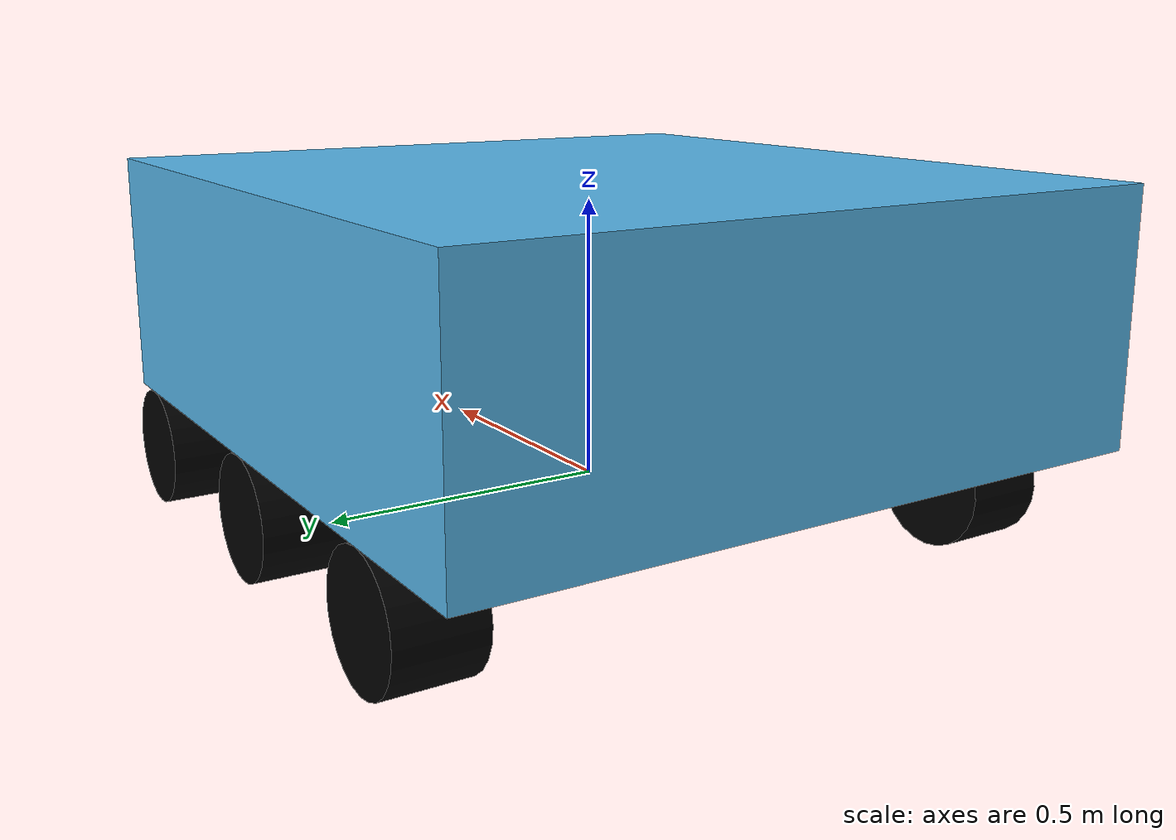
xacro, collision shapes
<?xml version="1.0"?>
<robot xmlns:xacro="http://ros.org/wiki/xacro">

  <xacro:include filename="$(find mowbot_gazebo_modelv3_description)/urdf/decorations.xacro" />
  <xacro:include filename="$(find mowbot_gazebo_modelv3_description)/urdf/inertia_macros.xacro" />
  <xacro:include filename="$(find mowbot_gazebo_modelv3_description)/urdf/track.xacro" />

  <!-- load parameter -->
  <xacro:property name="M_PI" value="3.14159"/>

  <!-- Robot Size -->
  <xacro:property name="robot_x_size" value="1.31600000" />
  <xacro:property name="robot_y_size" value="1.24000000" />
  <xacro:property name="robot_z_size" value="0.66160000" />

  <!-- Track Properties -->
  <xacro:property name="track_x_size" value="0.968" />
  <xacro:property name="track_y_size" value="0.15" />
  <xacro:property name="track_z_size" value="0.1" />
  <xacro:property name="track_wheel_radius" value="0.11" />
  <xacro:property name="track_wheel_width" value="0.15" />

  <!-- Track Mounting Position -->
  <xacro:property name="track_mount_x_size" value="0.1" />
  <xacro:property name="track_mount_y_size" value="${robot_y_size - track_wheel_width}" />
  <xacro:property name="track_mount_vertical_offset" value="0" />

  <!-- Body Box Size -->
  <xacro:property name="body_box_x_size" value="${robot_x_size}" />
  <xacro:property name="body_box_y_size" value="${robot_y_size}" />
  <xacro:property name="body_box_z_size" value="${robot_z_size - 2*track_wheel_radius}" />

  <!-- Robot mass (kg) -->
  <xacro:property name="robot_mass" value="310" />
  <xacro:property name="robot_body_mass" value="297" />
  <xacro:property name="robot_track_mass" value="0.5" />
  <xacro:property name="robot_track_wheel_mass" value="1" />

  <!-- robot body -->
  <link name="base_link">
  </link>

  <!-- robot body box -->
  <!-- body box link to store the robot's body inertia -->
  <link name="body_box">
    <collision>
      <geometry>
        <box size="${body_box_x_size} ${body_box_y_size} ${body_box_z_size}"/>
      </geometry>
    </collision>
    <inertial_box mass="297" x="${body_box_x_size}" y="${body_box_y_size}" z="${body_box_z_size}">
      <origin xyz="0 0 0" />
    </inertial_box>
  </link>

  <joint name="body_box_joint" type="fixed">
    <origin xyz="0 0 ${0.5*(robot_z_size-2*track_wheel_radius)+track_wheel_radius}" rpy="0 0 0" />
    <parent link="base_link" />
    <child link="body_box" />
  </joint>

  <link name="base_visual">
    <visual>
      <geometry>
        <mesh filename="package://mowbot_gazebo_modelv3_description/mesh/mowbot_modelv3.stl" scale="1.0 1.0 1.0"/>
      </geometry>
      <material name="orange"/>
    </visual>
  </link>

  <joint name="base_visual_joint" type="fixed">
    <origin xyz="0 0 ${track_wheel_radius}" rpy="0 0 0" />
    <parent link="base_link" />
    <child link="base_visual" />
  </joint>

  <link name="base_footprint">
  </link>

  <joint name="base_footprint_joint" type="fixed">
    <origin xyz="0.0 0.0 ${-track_wheel_radius}" rpy="0.0 0.0 0.0"/>
    <parent link="base_link" />
    <child link="base_footprint" />
  </joint>

  <!-- Track macros -->
  <xacro:track track_prefix="left">
    <origin xyz="${track_mount_x_size} ${0.5*track_mount_y_size} ${-track_mount_vertical_offset}" rpy="0 0 0"/>
  </xacro:track>

  <xacro:track track_prefix="right">
    <origin xyz="${track_mount_x_size} ${-0.5*track_mount_y_size} ${-track_mount_vertical_offset}" rpy="0 0 0"/>
  </xacro:track>

  <!-- Gazebo -->
  <gazebo>
    <plugin name="gazebo_ros2_control" filename="libgazebo_ros2_control.so">
      <parameters>$(find mowbot_gazebo_modelv3_description)/config/gazebo_control.yaml</parameters>
    </plugin>
  </gazebo>

  <gazebo reference="base_visual">
    <material>Gazebo/Orange</material>
  </gazebo>

  <!-- ROS2 control -->
  <ros2_control name="mowbot_hardware" type="system">
    <hardware>
        <plugin>gazebo_ros2_control/GazeboSystem</plugin>
    </hardware>

    <!-- Left Track -->
    <joint name="left_track_front_wheel_joint" type="continuous">
      <command_interface name="velocity">
        <param name="min">-2</param>
        <param name="max">2</param>
      </command_interface>
      <state_interface name="position"/>
      <state_interface name="velocity"/>
    </joint>

    <joint name="left_track_middle_wheel_joint" type="continuous">
      <command_interface name="velocity">
        <param name="min">-2</param>
        <param name="max">2</param>
      </command_interface>
      <state_interface name="position"/>
      <state_interface name="velocity"/>
    </joint>

    <joint name="left_track_rear_wheel_joint" type="continuous">
      <command_interface name="velocity">
        <param name="min">-2</param>
        <param name="max">2</param>
      </command_interface>
      <state_interface name="position"/>
      <state_interface name="velocity"/>
    </joint>

    <!-- Right Track -->
    <joint name="right_track_front_wheel_joint" type="continuous">
      <command_interface name="velocity">
        <param name="min">-2</param>
        <param name="max">2</param>
      </command_interface>
      <state_interface name="position"/>
      <state_interface name="velocity"/>
    </joint>

    <joint name="right_track_middle_wheel_joint" type="continuous">
      <command_interface name="velocity">
        <param name="min">-2</param>
        <param name="max">2</param>
      </command_interface>
      <state_interface name="position"/>
      <state_interface name="velocity"/>
    </joint>

    <joint name="right_track_rear_wheel_joint" type="continuous">
      <command_interface name="velocity">
        <param name="min">-2</param>
        <param name="max">2</param>
      </command_interface>
      <state_interface name="position"/>
      <state_interface name="velocity"/>
    </joint>

  </ros2_control>

</robot>

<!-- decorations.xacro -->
<robot xmlns:xacro="http://ros.org/wiki/xacro">

  <material name="orange"><color rgba="1.0 0.4235 0.0392 1.0"/></material>
  <material name="grey"><color rgba="0.5 0.5 0.5 1.0"/></material>
  <material name="black"><color rgba="0.0 0.0 0.0 1.0"/></material>

</robot>

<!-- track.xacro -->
<robot xmlns:xacro="http://www.ros.org/wiki/xacro">

  <!-- Macro for a single track -->
  <!-- TODO: try to fix the problem that the macros of inertia_macros.xacro are not working in this file -->
  <xacro:macro name="track" params="track_prefix *joint_pose">

    <link name="${track_prefix}_track">
      <inertial>
          <origin xyz="0 0 0" />
          <mass value="${robot_track_mass}" />
          <inertia ixx="${(1/12) * robot_track_mass * (track_y_size*track_y_size+track_z_size*track_z_size)}" ixy="0.0" ixz="0.0"
                  iyy="${(1/12) * robot_track_mass * (track_x_size*track_x_size+track_z_size*track_z_size)}" iyz="0.0"
                  izz="${(1/12) * robot_track_mass * (track_x_size*track_x_size+track_y_size*track_y_size)}" />
      </inertial>
    </link>

    <joint name="${track_prefix}_track_joint" type="fixed">
      <parent link="base_link"/>
      <child link="${track_prefix}_track"/>
      <xacro:insert_block name="joint_pose"/>
      <axis xyz="0 1 0"/>
    </joint>

    <!-- Track Wheel -->
    <xacro:track_wheel
      wheel_prefix="${track_prefix}_track_front"
      parent_link="${track_prefix}_track"
      mass="${robot_track_wheel_mass}"
      radius="${track_wheel_radius}"
      length="${track_wheel_width}"
      origin_xyz="${-0.5*track_x_size} 0 0"
    />

    <xacro:track_wheel
      wheel_prefix="${track_prefix}_track_rear"
      parent_link="${track_prefix}_track"
      mass="${robot_track_wheel_mass}"
      radius="${track_wheel_radius}"
      length="${track_wheel_width}"
      origin_xyz="${0.5*track_x_size} 0 0"
    />

    <xacro:track_wheel
      wheel_prefix="${track_prefix}_track_middle"
      parent_link="${track_prefix}_track"
      mass="${robot_track_wheel_mass}"
      radius="${track_wheel_radius}"
      length="${track_wheel_width}"
      origin_xyz="0 0 0"
    />

  </xacro:macro>

  <!-- Macro for track wheel -->
  <xacro:macro name="track_wheel" params="wheel_prefix parent_link mass radius length origin_xyz">
    <link name="${wheel_prefix}_wheel">
      <visual>
        <origin xyz="0 0 0" rpy="${M_PI/2} 0 0"/>
        <geometry>
          <cylinder radius="${radius}" length="${length}"/>
        </geometry>
        <material name="black"/>
      </visual>
      <collision>
        <origin xyz="0 0 0" rpy="${M_PI/2} 0 0"/>
        <geometry>
          <cylinder radius="${radius}" length="${length}"/>
        </geometry>
      </collision>

      <inertial>
          <origin xyz="0 0 0" />
          <mass value="${mass}" />
          <inertia ixx="${(1/12) * mass * (3*radius*radius + length*length)}" ixy="0.0" ixz="0.0"
                  iyy="${(1/12) * mass * (3*radius*radius + length*length)}" iyz="0.0"
                  izz="${(1/2) * mass * (radius*radius)}" />
      </inertial>
    </link>

    <joint name="${wheel_prefix}_wheel_joint" type="continuous">
      <parent link="${parent_link}"/>
      <child link="${wheel_prefix}_wheel"/>
      <origin xyz="${origin_xyz}"/>
      <axis xyz="0 1 0"/>
    </joint>

    <gazebo reference="${wheel_prefix}_wheel">
      <material>Gazebo/Black</material>
      <mu1 value="5.0"/> <!-- Adjusted forward friction -->
      <mu2 value="3.0"/> <!-- Adjusted lateral friction -->
      <kp value="1000000.0"/> <!-- Tuned stiffness for stability -->
      <kd value="1.0"/> <!-- Reduced damping -->
      <fdir1 value="1 0 0"/> <!-- Aligned with forward motion -->
      <contact>
        <ode>
          <mu value="5.0"/> <!-- Consistent friction -->
          <mu2 value="3.0"/> <!-- Consistent lateral friction -->
          <minDepth value="0.001"/> <!-- Minimize separation -->
          <maxVel value="0.01"/> <!-- Slightly relaxed threshold -->
        </ode>
      </contact>
    </gazebo>

  </xacro:macro>

</robot>
